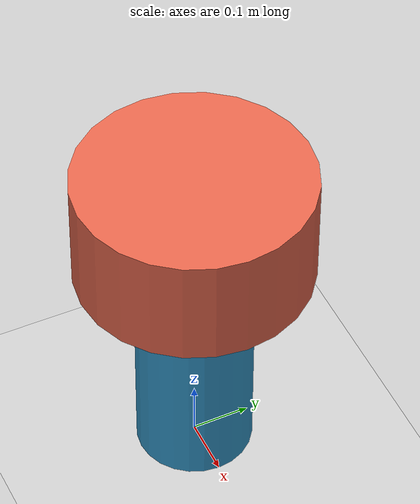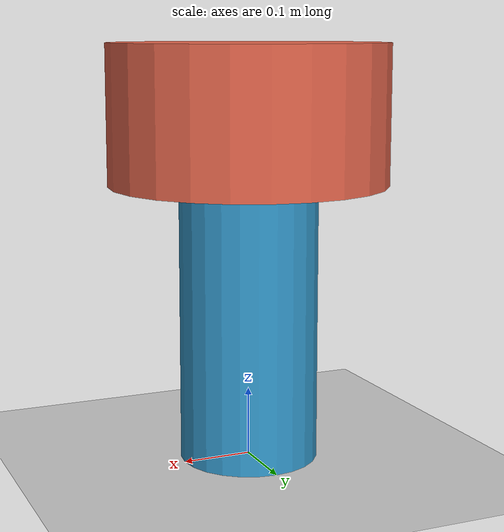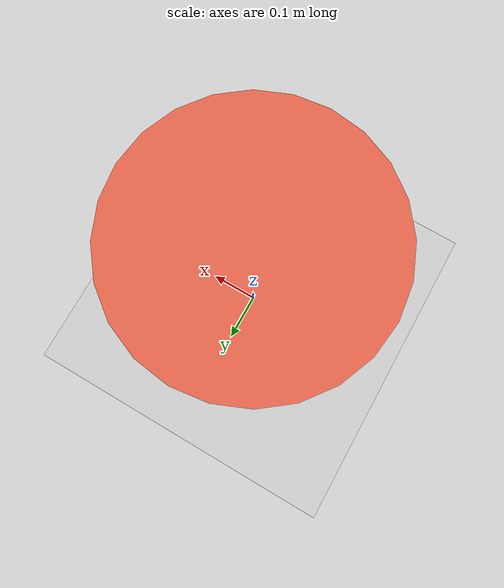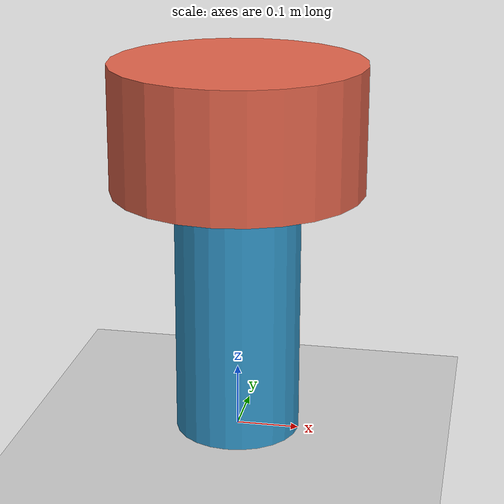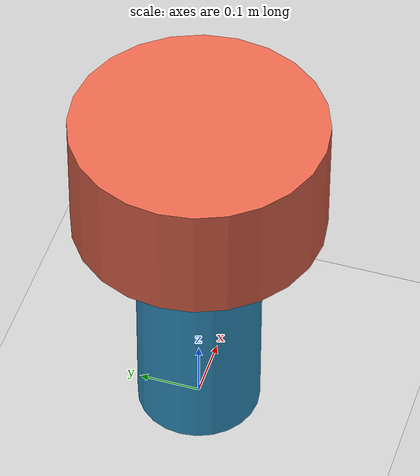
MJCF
<mujoco model="two_cylinders_yaw">
  <statistic center="0 0 0.5"/>

  <worldbody>
    <!-- 地板與光源 -->
    <geom name="floor" size="1 1 .05" type="plane" rgba="0.8 0.8 0.8 1"/>
    <light pos="0 0 3"/>

    <!-- 1. 底座圓柱體 (Base Cylinder) -->
    <!-- 假設尺寸：半徑 0.1m, 半高 0.2m (總高 0.4m) -->
    <!-- 設定 pos="0 0 0.2" 讓底座正好貼在地板上 -->
    <body name="base_cylinder" pos="0 0 0.2">
      <geom name="base_geom" type="cylinder" size="0.1 0.2" rgba="0.2 0.6 0.8 1"/>

      <!-- 2. 頂部圓柱體 (Top Cylinder) -->
      <!-- 放在底座頂端，相對位置 Z = 0.2 (底座半高) + 0.1 (頂部半高) = 0.3 -->
      <body name="top_cylinder" pos="0 0 0.3">

        <!-- 【關鍵】只能 Yaw 旋轉的關節 -->
        <!-- axis="0 0 1" 代表繞 Z 軸旋轉，range 限制旋轉角度 -90 到 90 度 -->
        <joint name="yaw_joint" type="hinge" axis="0 0 1" range="-90 90" limited="true"/>

        <!-- 頂部圓柱體幾何特徵： -->
        <!-- 圓周 2 倍 -> 半徑變為 2 倍 (0.1 * 2 = 0.2m) -->
        <!-- 高度 1/2  -> 半高變為 0.5 倍 (0.2 * 0.5 = 0.1m) -->
        <geom name="top_geom" type="cylinder" size="0.2 0.1" rgba="0.9 0.4 0.3 1"/>

      </body>
    </body>
  </worldbody>

  <!-- 3. 馬達驅動器 (選配，讓你可以控制這個 Yaw 關節) -->
  <actuator>
    <motor name="yaw_motor" joint="yaw_joint" gear="10"/>
  </actuator>
</mujoco>
